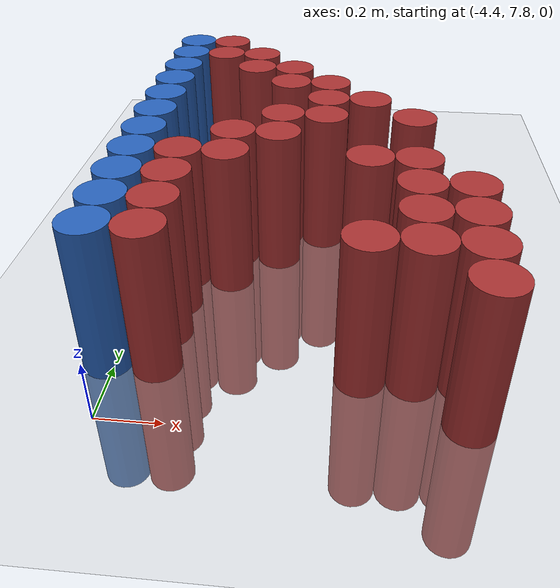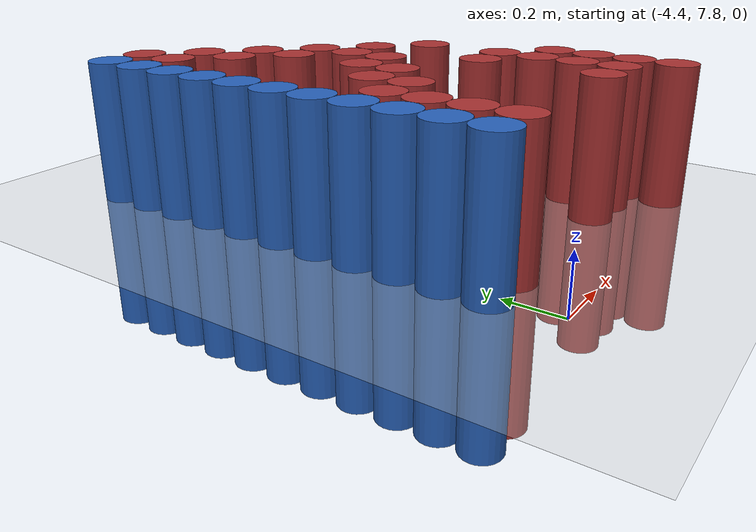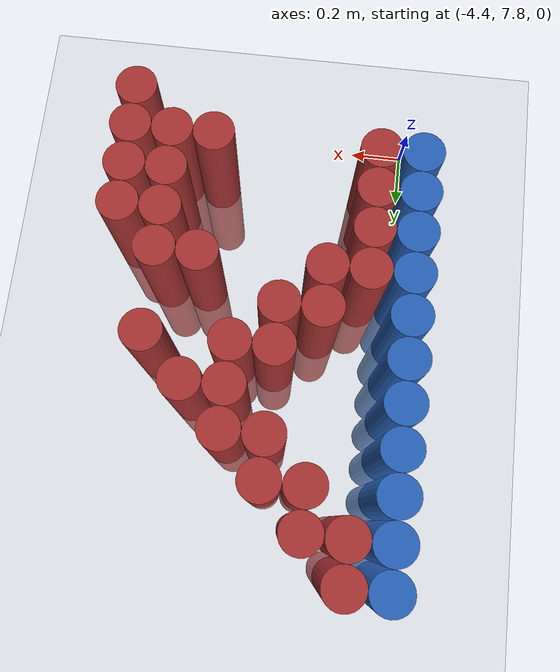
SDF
<sdf version="1.6">
 <world name="default">
  <model name="ground_plane">
   <static>1</static>
   <link name="link">
    <collision name="collision">
     <geometry><plane><normal>0 0 1</normal><size>100 100</size></plane></geometry>
     <surface><friction><ode><mu>100</mu><mu2>50</mu2></ode></friction></surface>
    </collision>
    <visual name="visual">
     <cast_shadows>0</cast_shadows>
     <geometry><plane><normal>0 0 1</normal><size>100 100</size></plane></geometry>
     <material>
      <script><uri>file://media/materials/scripts/gazebo.material</uri><name>Gazebo/Grey</name></script>
     </material>
    </visual>
   </link>
  </model>
  <model name="unit_cylinder_115">
   <static>1</static>
   <pose>-4.425000 8.025000 0.000000 0.000000 0.000000 0.000000</pose>
   <link name="link">
    <inertial>
     <mass>1</mass>
     <inertia><ixx>0.145833</ixx><ixy>0</ixy><ixz>0</ixz><iyy>0.145833</iyy><iyz>0</iyz><izz>0.125</izz></inertia>
    </inertial>
    <collision name="collision">
     <geometry><cylinder><radius>0.075000</radius><length>1</length></cylinder></geometry>
    </collision>
    <visual name="visual">
     <geometry><cylinder><radius>0.075000</radius><length>1</length></cylinder></geometry>
     <material>
      <ambient>0.152000 0.379000 0.720000 1</ambient>
      <diffuse>0.152000 0.379000 0.720000 1</diffuse>
     </material>
     <material>
      <script><name>Gazebo/Grey</name><uri>file://media/materials/scripts/gazebo.material</uri></script>
     </material>
    </visual>
    <sensor name="sensor_contact" type="contact"><contact><collision>collision</collision></contact></sensor>
   </link>
   <plugin filename="gz-sim-touchplugin-system" name="gz::sim::systems::TouchPlugin">
    <target>robot</target>
    <namespace>robot</namespace>
    <time>0.001</time>
    <enabled>true</enabled>
   </plugin>
  </model>
  <model name="unit_cylinder_116">
   <static>1</static>
   <pose>-4.425000 8.175000 0.000000 0.000000 0.000000 0.000000</pose>
   <link name="link">
    <inertial>
     <mass>1</mass>
     <inertia><ixx>0.145833</ixx><ixy>0</ixy><ixz>0</ixz><iyy>0.145833</iyy><iyz>0</iyz><izz>0.125</izz></inertia>
    </inertial>
    <collision name="collision">
     <geometry><cylinder><radius>0.075000</radius><length>1</length></cylinder></geometry>
    </collision>
    <visual name="visual">
     <geometry><cylinder><radius>0.075000</radius><length>1</length></cylinder></geometry>
     <material>
      <ambient>0.152000 0.379000 0.720000 1</ambient>
      <diffuse>0.152000 0.379000 0.720000 1</diffuse>
     </material>
     <material>
      <script><name>Gazebo/Grey</name><uri>file://media/materials/scripts/gazebo.material</uri></script>
     </material>
    </visual>
    <sensor name="sensor_contact" type="contact"><contact><collision>collision</collision></contact></sensor>
   </link>
   <plugin filename="gz-sim-touchplugin-system" name="gz::sim::systems::TouchPlugin">
    <target>robot</target>
    <namespace>robot</namespace>
    <time>0.001</time>
    <enabled>true</enabled>
   </plugin>
  </model>
  <model name="unit_cylinder_117">
   <static>1</static>
   <pose>-4.425000 8.325000 0.000000 0.000000 0.000000 0.000000</pose>
   <link name="link">
    <inertial>
     <mass>1</mass>
     <inertia><ixx>0.145833</ixx><ixy>0</ixy><ixz>0</ixz><iyy>0.145833</iyy><iyz>0</iyz><izz>0.125</izz></inertia>
    </inertial>
    <collision name="collision">
     <geometry><cylinder><radius>0.075000</radius><length>1</length></cylinder></geometry>
    </collision>
    <visual name="visual">
     <geometry><cylinder><radius>0.075000</radius><length>1</length></cylinder></geometry>
     <material>
      <ambient>0.152000 0.379000 0.720000 1</ambient>
      <diffuse>0.152000 0.379000 0.720000 1</diffuse>
     </material>
     <material>
      <script><name>Gazebo/Grey</name><uri>file://media/materials/scripts/gazebo.material</uri></script>
     </material>
    </visual>
    <sensor name="sensor_contact" type="contact"><contact><collision>collision</collision></contact></sensor>
   </link>
   <plugin filename="gz-sim-touchplugin-system" name="gz::sim::systems::TouchPlugin">
    <target>robot</target>
    <namespace>robot</namespace>
    <time>0.001</time>
    <enabled>true</enabled>
   </plugin>
  </model>
  <model name="unit_cylinder_118">
   <static>1</static>
   <pose>-4.425000 8.475000 0.000000 0.000000 0.000000 0.000000</pose>
   <link name="link">
    <inertial>
     <mass>1</mass>
     <inertia><ixx>0.145833</ixx><ixy>0</ixy><ixz>0</ixz><iyy>0.145833</iyy><iyz>0</iyz><izz>0.125</izz></inertia>
    </inertial>
    <collision name="collision">
     <geometry><cylinder><radius>0.075000</radius><length>1</length></cylinder></geometry>
    </collision>
    <visual name="visual">
     <geometry><cylinder><radius>0.075000</radius><length>1</length></cylinder></geometry>
     <material>
      <ambient>0.152000 0.379000 0.720000 1</ambient>
      <diffuse>0.152000 0.379000 0.720000 1</diffuse>
     </material>
     <material>
      <script><name>Gazebo/Grey</name><uri>file://media/materials/scripts/gazebo.material</uri></script>
     </material>
    </visual>
    <sensor name="sensor_contact" type="contact"><contact><collision>collision</collision></contact></sensor>
   </link>
   <plugin filename="gz-sim-touchplugin-system" name="gz::sim::systems::TouchPlugin">
    <target>robot</target>
    <namespace>robot</namespace>
    <time>0.001</time>
    <enabled>true</enabled>
   </plugin>
  </model>
  <model name="unit_cylinder_119">
   <static>1</static>
   <pose>-4.425000 8.625000 0.000000 0.000000 0.000000 0.000000</pose>
   <link name="link">
    <inertial>
     <mass>1</mass>
     <inertia><ixx>0.145833</ixx><ixy>0</ixy><ixz>0</ixz><iyy>0.145833</iyy><iyz>0</iyz><izz>0.125</izz></inertia>
    </inertial>
    <collision name="collision">
     <geometry><cylinder><radius>0.075000</radius><length>1</length></cylinder></geometry>
    </collision>
    <visual name="visual">
     <geometry><cylinder><radius>0.075000</radius><length>1</length></cylinder></geometry>
     <material>
      <ambient>0.152000 0.379000 0.720000 1</ambient>
      <diffuse>0.152000 0.379000 0.720000 1</diffuse>
     </material>
     <material>
      <script><name>Gazebo/Grey</name><uri>file://media/materials/scripts/gazebo.material</uri></script>
     </material>
    </visual>
    <sensor name="sensor_contact" type="contact"><contact><collision>collision</collision></contact></sensor>
   </link>
   <plugin filename="gz-sim-touchplugin-system" name="gz::sim::systems::TouchPlugin">
    <target>robot</target>
    <namespace>robot</namespace>
    <time>0.001</time>
    <enabled>true</enabled>
   </plugin>
  </model>
  <model name="unit_cylinder_120">
   <static>1</static>
   <pose>-4.425000 8.775000 0.000000 0.000000 0.000000 0.000000</pose>
   <link name="link">
    <inertial>
     <mass>1</mass>
     <inertia><ixx>0.145833</ixx><ixy>0</ixy><ixz>0</ixz><iyy>0.145833</iyy><iyz>0</iyz><izz>0.125</izz></inertia>
    </inertial>
    <collision name="collision">
     <geometry><cylinder><radius>0.075000</radius><length>1</length></cylinder></geometry>
    </collision>
    <visual name="visual">
     <geometry><cylinder><radius>0.075000</radius><length>1</length></cylinder></geometry>
     <material>
      <ambient>0.152000 0.379000 0.720000 1</ambient>
      <diffuse>0.152000 0.379000 0.720000 1</diffuse>
     </material>
     <material>
      <script><name>Gazebo/Grey</name><uri>file://media/materials/scripts/gazebo.material</uri></script>
     </material>
    </visual>
    <sensor name="sensor_contact" type="contact"><contact><collision>collision</collision></contact></sensor>
   </link>
   <plugin filename="gz-sim-touchplugin-system" name="gz::sim::systems::TouchPlugin">
    <target>robot</target>
    <namespace>robot</namespace>
    <time>0.001</time>
    <enabled>true</enabled>
   </plugin>
  </model>
  <model name="unit_cylinder_121">
   <static>1</static>
   <pose>-4.425000 8.925000 0.000000 0.000000 0.000000 0.000000</pose>
   <link name="link">
    <inertial>
     <mass>1</mass>
     <inertia><ixx>0.145833</ixx><ixy>0</ixy><ixz>0</ixz><iyy>0.145833</iyy><iyz>0</iyz><izz>0.125</izz></inertia>
    </inertial>
    <collision name="collision">
     <geometry><cylinder><radius>0.075000</radius><length>1</length></cylinder></geometry>
    </collision>
    <visual name="visual">
     <geometry><cylinder><radius>0.075000</radius><length>1</length></cylinder></geometry>
     <material>
      <ambient>0.152000 0.379000 0.720000 1</ambient>
      <diffuse>0.152000 0.379000 0.720000 1</diffuse>
     </material>
     <material>
      <script><name>Gazebo/Grey</name><uri>file://media/materials/scripts/gazebo.material</uri></script>
     </material>
    </visual>
    <sensor name="sensor_contact" type="contact"><contact><collision>collision</collision></contact></sensor>
   </link>
   <plugin filename="gz-sim-touchplugin-system" name="gz::sim::systems::TouchPlugin">
    <target>robot</target>
    <namespace>robot</namespace>
    <time>0.001</time>
    <enabled>true</enabled>
   </plugin>
  </model>
  <model name="unit_cylinder_122">
   <static>1</static>
   <pose>-4.425000 9.075000 0.000000 0.000000 0.000000 0.000000</pose>
   <link name="link">
    <inertial>
     <mass>1</mass>
     <inertia><ixx>0.145833</ixx><ixy>0</ixy><ixz>0</ixz><iyy>0.145833</iyy><iyz>0</iyz><izz>0.125</izz></inertia>
    </inertial>
    <collision name="collision">
     <geometry><cylinder><radius>0.075000</radius><length>1</length></cylinder></geometry>
    </collision>
    <visual name="visual">
     <geometry><cylinder><radius>0.075000</radius><length>1</length></cylinder></geometry>
     <material>
      <ambient>0.152000 0.379000 0.720000 1</ambient>
      <diffuse>0.152000 0.379000 0.720000 1</diffuse>
     </material>
     <material>
      <script><name>Gazebo/Grey</name><uri>file://media/materials/scripts/gazebo.material</uri></script>
     </material>
    </visual>
    <sensor name="sensor_contact" type="contact"><contact><collision>collision</collision></contact></sensor>
   </link>
   <plugin filename="gz-sim-touchplugin-system" name="gz::sim::systems::TouchPlugin">
    <target>robot</target>
    <namespace>robot</namespace>
    <time>0.001</time>
    <enabled>true</enabled>
   </plugin>
  </model>
  <model name="unit_cylinder_123">
   <static>1</static>
   <pose>-4.425000 9.225000 0.000000 0.000000 0.000000 0.000000</pose>
   <link name="link">
    <inertial>
     <mass>1</mass>
     <inertia><ixx>0.145833</ixx><ixy>0</ixy><ixz>0</ixz><iyy>0.145833</iyy><iyz>0</iyz><izz>0.125</izz></inertia>
    </inertial>
    <collision name="collision">
     <geometry><cylinder><radius>0.075000</radius><length>1</length></cylinder></geometry>
    </collision>
    <visual name="visual">
     <geometry><cylinder><radius>0.075000</radius><length>1</length></cylinder></geometry>
     <material>
      <ambient>0.152000 0.379000 0.720000 1</ambient>
      <diffuse>0.152000 0.379000 0.720000 1</diffuse>
     </material>
     <material>
      <script><name>Gazebo/Grey</name><uri>file://media/materials/scripts/gazebo.material</uri></script>
     </material>
    </visual>
    <sensor name="sensor_contact" type="contact"><contact><collision>collision</collision></contact></sensor>
   </link>
   <plugin filename="gz-sim-touchplugin-system" name="gz::sim::systems::TouchPlugin">
    <target>robot</target>
    <namespace>robot</namespace>
    <time>0.001</time>
    <enabled>true</enabled>
   </plugin>
  </model>
  <model name="unit_cylinder_124">
   <static>1</static>
   <pose>-4.425000 9.375000 0.000000 0.000000 0.000000 0.000000</pose>
   <link name="link">
    <inertial>
     <mass>1</mass>
     <inertia><ixx>0.145833</ixx><ixy>0</ixy><ixz>0</ixz><iyy>0.145833</iyy><iyz>0</iyz><izz>0.125</izz></inertia>
    </inertial>
    <collision name="collision">
     <geometry><cylinder><radius>0.075000</radius><length>1</length></cylinder></geometry>
    </collision>
    <visual name="visual">
     <geometry><cylinder><radius>0.075000</radius><length>1</length></cylinder></geometry>
     <material>
      <ambient>0.152000 0.379000 0.720000 1</ambient>
      <diffuse>0.152000 0.379000 0.720000 1</diffuse>
     </material>
     <material>
      <script><name>Gazebo/Grey</name><uri>file://media/materials/scripts/gazebo.material</uri></script>
     </material>
    </visual>
    <sensor name="sensor_contact" type="contact"><contact><collision>collision</collision></contact></sensor>
   </link>
   <plugin filename="gz-sim-touchplugin-system" name="gz::sim::systems::TouchPlugin">
    <target>robot</target>
    <namespace>robot</namespace>
    <time>0.001</time>
    <enabled>true</enabled>
   </plugin>
  </model>
  <model name="unit_cylinder_125">
   <static>1</static>
   <pose>-4.425000 9.525000 0.000000 0.000000 0.000000 0.000000</pose>
   <link name="link">
    <inertial>
     <mass>1</mass>
     <inertia><ixx>0.145833</ixx><ixy>0</ixy><ixz>0</ixz><iyy>0.145833</iyy><iyz>0</iyz><izz>0.125</izz></inertia>
    </inertial>
    <collision name="collision">
     <geometry><cylinder><radius>0.075000</radius><length>1</length></cylinder></geometry>
    </collision>
    <visual name="visual">
     <geometry><cylinder><radius>0.075000</radius><length>1</length></cylinder></geometry>
     <material>
      <ambient>0.152000 0.379000 0.720000 1</ambient>
      <diffuse>0.152000 0.379000 0.720000 1</diffuse>
     </material>
     <material>
      <script><name>Gazebo/Grey</name><uri>file://media/materials/scripts/gazebo.material</uri></script>
     </material>
    </visual>
    <sensor name="sensor_contact" type="contact"><contact><collision>collision</collision></contact></sensor>
   </link>
   <plugin filename="gz-sim-touchplugin-system" name="gz::sim::systems::TouchPlugin">
    <target>robot</target>
    <namespace>robot</namespace>
    <time>0.001</time>
    <enabled>true</enabled>
   </plugin>
  </model>
  <model name="unit_cylinder_139">
   <static>1</static>
   <pose>-4.275000 8.025000 0.000000 0.000000 0.000000 0.000000</pose>
   <link name="link">
    <inertial>
     <mass>1</mass>
     <inertia><ixx>0.145833</ixx><ixy>0</ixy><ixz>0</ixz><iyy>0.145833</iyy><iyz>0</iyz><izz>0.125</izz></inertia>
    </inertial>
    <collision name="collision">
     <geometry><cylinder><radius>0.075000</radius><length>1</length></cylinder></geometry>
    </collision>
    <visual name="visual">
     <geometry><cylinder><radius>0.075000</radius><length>1</length></cylinder></geometry>
     <material>
      <ambient>0.648000 0.192000 0.192000 1</ambient>
      <diffuse>0.648000 0.192000 0.192000 1</diffuse>
     </material>
     <material>
      <script><name>Gazebo/Grey</name><uri>file://media/materials/scripts/gazebo.material</uri></script>
     </material>
    </visual>
    <sensor name="sensor_contact" type="contact"><contact><collision>collision</collision></contact></sensor>
   </link>
   <plugin filename="gz-sim-touchplugin-system" name="gz::sim::systems::TouchPlugin">
    <target>robot</target>
    <namespace>robot</namespace>
    <time>0.001</time>
    <enabled>true</enabled>
   </plugin>
  </model>
  <model name="unit_cylinder_140">
   <static>1</static>
   <pose>-4.275000 8.175000 0.000000 0.000000 0.000000 0.000000</pose>
   <link name="link">
    <inertial>
     <mass>1</mass>
     <inertia><ixx>0.145833</ixx><ixy>0</ixy><ixz>0</ixz><iyy>0.145833</iyy><iyz>0</iyz><izz>0.125</izz></inertia>
    </inertial>
    <collision name="collision">
     <geometry><cylinder><radius>0.075000</radius><length>1</length></cylinder></geometry>
    </collision>
    <visual name="visual">
     <geometry><cylinder><radius>0.075000</radius><length>1</length></cylinder></geometry>
     <material>
      <ambient>0.648000 0.192000 0.192000 1</ambient>
      <diffuse>0.648000 0.192000 0.192000 1</diffuse>
     </material>
     <material>
      <script><name>Gazebo/Grey</name><uri>file://media/materials/scripts/gazebo.material</uri></script>
     </material>
    </visual>
    <sensor name="sensor_contact" type="contact"><contact><collision>collision</collision></contact></sensor>
   </link>
   <plugin filename="gz-sim-touchplugin-system" name="gz::sim::systems::TouchPlugin">
    <target>robot</target>
    <namespace>robot</namespace>
    <time>0.001</time>
    <enabled>true</enabled>
   </plugin>
  </model>
  <model name="unit_cylinder_141">
   <static>1</static>
   <pose>-4.275000 8.325000 0.000000 0.000000 0.000000 0.000000</pose>
   <link name="link">
    <inertial>
     <mass>1</mass>
     <inertia><ixx>0.145833</ixx><ixy>0</ixy><ixz>0</ixz><iyy>0.145833</iyy><iyz>0</iyz><izz>0.125</izz></inertia>
    </inertial>
    <collision name="collision">
     <geometry><cylinder><radius>0.075000</radius><length>1</length></cylinder></geometry>
    </collision>
    <visual name="visual">
     <geometry><cylinder><radius>0.075000</radius><length>1</length></cylinder></geometry>
     <material>
      <ambient>0.648000 0.192000 0.192000 1</ambient>
      <diffuse>0.648000 0.192000 0.192000 1</diffuse>
     </material>
     <material>
      <script><name>Gazebo/Grey</name><uri>file://media/materials/scripts/gazebo.material</uri></script>
     </material>
    </visual>
    <sensor name="sensor_contact" type="contact"><contact><collision>collision</collision></contact></sensor>
   </link>
   <plugin filename="gz-sim-touchplugin-system" name="gz::sim::systems::TouchPlugin">
    <target>robot</target>
    <namespace>robot</namespace>
    <time>0.001</time>
    <enabled>true</enabled>
   </plugin>
  </model>
  <model name="unit_cylinder_142">
   <static>1</static>
   <pose>-4.275000 8.475000 0.000000 0.000000 0.000000 0.000000</pose>
   <link name="link">
    <inertial>
     <mass>1</mass>
     <inertia><ixx>0.145833</ixx><ixy>0</ixy><ixz>0</ixz><iyy>0.145833</iyy><iyz>0</iyz><izz>0.125</izz></inertia>
    </inertial>
    <collision name="collision">
     <geometry><cylinder><radius>0.075000</radius><length>1</length></cylinder></geometry>
    </collision>
    <visual name="visual">
     <geometry><cylinder><radius>0.075000</radius><length>1</length></cylinder></geometry>
     <material>
      <ambient>0.648000 0.192000 0.192000 1</ambient>
      <diffuse>0.648000 0.192000 0.192000 1</diffuse>
     </material>
     <material>
      <script><name>Gazebo/Grey</name><uri>file://media/materials/scripts/gazebo.material</uri></script>
     </material>
    </visual>
    <sensor name="sensor_contact" type="contact"><contact><collision>collision</collision></contact></sensor>
   </link>
   <plugin filename="gz-sim-touchplugin-system" name="gz::sim::systems::TouchPlugin">
    <target>robot</target>
    <namespace>robot</namespace>
    <time>0.001</time>
    <enabled>true</enabled>
   </plugin>
  </model>
  <model name="unit_cylinder_143">
   <static>1</static>
   <pose>-4.275000 9.375000 0.000000 0.000000 0.000000 0.000000</pose>
   <link name="link">
    <inertial>
     <mass>1</mass>
     <inertia><ixx>0.145833</ixx><ixy>0</ixy><ixz>0</ixz><iyy>0.145833</iyy><iyz>0</iyz><izz>0.125</izz></inertia>
    </inertial>
    <collision name="collision">
     <geometry><cylinder><radius>0.075000</radius><length>1</length></cylinder></geometry>
    </collision>
    <visual name="visual">
     <geometry><cylinder><radius>0.075000</radius><length>1</length></cylinder></geometry>
     <material>
      <ambient>0.648000 0.192000 0.192000 1</ambient>
      <diffuse>0.648000 0.192000 0.192000 1</diffuse>
     </material>
     <material>
      <script><name>Gazebo/Grey</name><uri>file://media/materials/scripts/gazebo.material</uri></script>
     </material>
    </visual>
    <sensor name="sensor_contact" type="contact"><contact><collision>collision</collision></contact></sensor>
   </link>
   <plugin filename="gz-sim-touchplugin-system" name="gz::sim::systems::TouchPlugin">
    <target>robot</target>
    <namespace>robot</namespace>
    <time>0.001</time>
    <enabled>true</enabled>
   </plugin>
  </model>
  <model name="unit_cylinder_144">
   <static>1</static>
   <pose>-4.275000 9.525000 0.000000 0.000000 0.000000 0.000000</pose>
   <link name="link">
    <inertial>
     <mass>1</mass>
     <inertia><ixx>0.145833</ixx><ixy>0</ixy><ixz>0</ixz><iyy>0.145833</iyy><iyz>0</iyz><izz>0.125</izz></inertia>
    </inertial>
    <collision name="collision">
     <geometry><cylinder><radius>0.075000</radius><length>1</length></cylinder></geometry>
    </collision>
    <visual name="visual">
     <geometry><cylinder><radius>0.075000</radius><length>1</length></cylinder></geometry>
     <material>
      <ambient>0.648000 0.192000 0.192000 1</ambient>
      <diffuse>0.648000 0.192000 0.192000 1</diffuse>
     </material>
     <material>
      <script><name>Gazebo/Grey</name><uri>file://media/materials/scripts/gazebo.material</uri></script>
     </material>
    </visual>
    <sensor name="sensor_contact" type="contact"><contact><collision>collision</collision></contact></sensor>
   </link>
   <plugin filename="gz-sim-touchplugin-system" name="gz::sim::systems::TouchPlugin">
    <target>robot</target>
    <namespace>robot</namespace>
    <time>0.001</time>
    <enabled>true</enabled>
   </plugin>
  </model>
  <model name="unit_cylinder_149">
   <static>1</static>
   <pose>-4.125000 8.475000 0.000000 0.000000 0.000000 0.000000</pose>
   <link name="link">
    <inertial>
     <mass>1</mass>
     <inertia><ixx>0.145833</ixx><ixy>0</ixy><ixz>0</ixz><iyy>0.145833</iyy><iyz>0</iyz><izz>0.125</izz></inertia>
    </inertial>
    <collision name="collision">
     <geometry><cylinder><radius>0.075000</radius><length>1</length></cylinder></geometry>
    </collision>
    <visual name="visual">
     <geometry><cylinder><radius>0.075000</radius><length>1</length></cylinder></geometry>
     <material>
      <ambient>0.648000 0.192000 0.192000 1</ambient>
      <diffuse>0.648000 0.192000 0.192000 1</diffuse>
     </material>
     <material>
      <script><name>Gazebo/Grey</name><uri>file://media/materials/scripts/gazebo.material</uri></script>
     </material>
    </visual>
    <sensor name="sensor_contact" type="contact"><contact><collision>collision</collision></contact></sensor>
   </link>
   <plugin filename="gz-sim-touchplugin-system" name="gz::sim::systems::TouchPlugin">
    <target>robot</target>
    <namespace>robot</namespace>
    <time>0.001</time>
    <enabled>true</enabled>
   </plugin>
  </model>
  <model name="unit_cylinder_150">
   <static>1</static>
   <pose>-4.125000 8.625000 0.000000 0.000000 0.000000 0.000000</pose>
   <link name="link">
    <inertial>
     <mass>1</mass>
     <inertia><ixx>0.145833</ixx><ixy>0</ixy><ixz>0</ixz><iyy>0.145833</iyy><iyz>0</iyz><izz>0.125</izz></inertia>
    </inertial>
    <collision name="collision">
     <geometry><cylinder><radius>0.075000</radius><length>1</length></cylinder></geometry>
    </collision>
    <visual name="visual">
     <geometry><cylinder><radius>0.075000</radius><length>1</length></cylinder></geometry>
     <material>
      <ambient>0.648000 0.192000 0.192000 1</ambient>
      <diffuse>0.648000 0.192000 0.192000 1</diffuse>
     </material>
     <material>
      <script><name>Gazebo/Grey</name><uri>file://media/materials/scripts/gazebo.material</uri></script>
     </material>
    </visual>
    <sensor name="sensor_contact" type="contact"><contact><collision>collision</collision></contact></sensor>
   </link>
   <plugin filename="gz-sim-touchplugin-system" name="gz::sim::systems::TouchPlugin">
    <target>robot</target>
    <namespace>robot</namespace>
    <time>0.001</time>
    <enabled>true</enabled>
   </plugin>
  </model>
  <model name="unit_cylinder_151">
   <static>1</static>
   <pose>-4.125000 9.225000 0.000000 0.000000 0.000000 0.000000</pose>
   <link name="link">
    <inertial>
     <mass>1</mass>
     <inertia><ixx>0.145833</ixx><ixy>0</ixy><ixz>0</ixz><iyy>0.145833</iyy><iyz>0</iyz><izz>0.125</izz></inertia>
    </inertial>
    <collision name="collision">
     <geometry><cylinder><radius>0.075000</radius><length>1</length></cylinder></geometry>
    </collision>
    <visual name="visual">
     <geometry><cylinder><radius>0.075000</radius><length>1</length></cylinder></geometry>
     <material>
      <ambient>0.648000 0.192000 0.192000 1</ambient>
      <diffuse>0.648000 0.192000 0.192000 1</diffuse>
     </material>
     <material>
      <script><name>Gazebo/Grey</name><uri>file://media/materials/scripts/gazebo.material</uri></script>
     </material>
    </visual>
    <sensor name="sensor_contact" type="contact"><contact><collision>collision</collision></contact></sensor>
   </link>
   <plugin filename="gz-sim-touchplugin-system" name="gz::sim::systems::TouchPlugin">
    <target>robot</target>
    <namespace>robot</namespace>
    <time>0.001</time>
    <enabled>true</enabled>
   </plugin>
  </model>
  <model name="unit_cylinder_152">
   <static>1</static>
   <pose>-4.125000 9.375000 0.000000 0.000000 0.000000 0.000000</pose>
   <link name="link">
    <inertial>
     <mass>1</mass>
     <inertia><ixx>0.145833</ixx><ixy>0</ixy><ixz>0</ixz><iyy>0.145833</iyy><iyz>0</iyz><izz>0.125</izz></inertia>
    </inertial>
    <collision name="collision">
     <geometry><cylinder><radius>0.075000</radius><length>1</length></cylinder></geometry>
    </collision>
    <visual name="visual">
     <geometry><cylinder><radius>0.075000</radius><length>1</length></cylinder></geometry>
     <material>
      <ambient>0.648000 0.192000 0.192000 1</ambient>
      <diffuse>0.648000 0.192000 0.192000 1</diffuse>
     </material>
     <material>
      <script><name>Gazebo/Grey</name><uri>file://media/materials/scripts/gazebo.material</uri></script>
     </material>
    </visual>
    <sensor name="sensor_contact" type="contact"><contact><collision>collision</collision></contact></sensor>
   </link>
   <plugin filename="gz-sim-touchplugin-system" name="gz::sim::systems::TouchPlugin">
    <target>robot</target>
    <namespace>robot</namespace>
    <time>0.001</time>
    <enabled>true</enabled>
   </plugin>
  </model>
  <model name="unit_cylinder_154">
   <static>1</static>
   <pose>-3.975000 8.625000 0.000000 0.000000 0.000000 0.000000</pose>
   <link name="link">
    <inertial>
     <mass>1</mass>
     <inertia><ixx>0.145833</ixx><ixy>0</ixy><ixz>0</ixz><iyy>0.145833</iyy><iyz>0</iyz><izz>0.125</izz></inertia>
    </inertial>
    <collision name="collision">
     <geometry><cylinder><radius>0.075000</radius><length>1</length></cylinder></geometry>
    </collision>
    <visual name="visual">
     <geometry><cylinder><radius>0.075000</radius><length>1</length></cylinder></geometry>
     <material>
      <ambient>0.648000 0.192000 0.192000 1</ambient>
      <diffuse>0.648000 0.192000 0.192000 1</diffuse>
     </material>
     <material>
      <script><name>Gazebo/Grey</name><uri>file://media/materials/scripts/gazebo.material</uri></script>
     </material>
    </visual>
    <sensor name="sensor_contact" type="contact"><contact><collision>collision</collision></contact></sensor>
   </link>
   <plugin filename="gz-sim-touchplugin-system" name="gz::sim::systems::TouchPlugin">
    <target>robot</target>
    <namespace>robot</namespace>
    <time>0.001</time>
    <enabled>true</enabled>
   </plugin>
  </model>
  <model name="unit_cylinder_155">
   <static>1</static>
   <pose>-3.975000 8.775000 0.000000 0.000000 0.000000 0.000000</pose>
   <link name="link">
    <inertial>
     <mass>1</mass>
     <inertia><ixx>0.145833</ixx><ixy>0</ixy><ixz>0</ixz><iyy>0.145833</iyy><iyz>0</iyz><izz>0.125</izz></inertia>
    </inertial>
    <collision name="collision">
     <geometry><cylinder><radius>0.075000</radius><length>1</length></cylinder></geometry>
    </collision>
    <visual name="visual">
     <geometry><cylinder><radius>0.075000</radius><length>1</length></cylinder></geometry>
     <material>
      <ambient>0.648000 0.192000 0.192000 1</ambient>
      <diffuse>0.648000 0.192000 0.192000 1</diffuse>
     </material>
     <material>
      <script><name>Gazebo/Grey</name><uri>file://media/materials/scripts/gazebo.material</uri></script>
     </material>
    </visual>
    <sensor name="sensor_contact" type="contact"><contact><collision>collision</collision></contact></sensor>
   </link>
   <plugin filename="gz-sim-touchplugin-system" name="gz::sim::systems::TouchPlugin">
    <target>robot</target>
    <namespace>robot</namespace>
    <time>0.001</time>
    <enabled>true</enabled>
   </plugin>
  </model>
  <model name="unit_cylinder_156">
   <static>1</static>
   <pose>-3.975000 9.075000 0.000000 0.000000 0.000000 0.000000</pose>
   <link name="link">
    <inertial>
     <mass>1</mass>
     <inertia><ixx>0.145833</ixx><ixy>0</ixy><ixz>0</ixz><iyy>0.145833</iyy><iyz>0</iyz><izz>0.125</izz></inertia>
    </inertial>
    <collision name="collision">
     <geometry><cylinder><radius>0.075000</radius><length>1</length></cylinder></geometry>
    </collision>
    <visual name="visual">
     <geometry><cylinder><radius>0.075000</radius><length>1</length></cylinder></geometry>
     <material>
      <ambient>0.648000 0.192000 0.192000 1</ambient>
      <diffuse>0.648000 0.192000 0.192000 1</diffuse>
     </material>
     <material>
      <script><name>Gazebo/Grey</name><uri>file://media/materials/scripts/gazebo.material</uri></script>
     </material>
    </visual>
    <sensor name="sensor_contact" type="contact"><contact><collision>collision</collision></contact></sensor>
   </link>
   <plugin filename="gz-sim-touchplugin-system" name="gz::sim::systems::TouchPlugin">
    <target>robot</target>
    <namespace>robot</namespace>
    <time>0.001</time>
    <enabled>true</enabled>
   </plugin>
  </model>
  <model name="unit_cylinder_157">
   <static>1</static>
   <pose>-3.975000 9.225000 0.000000 0.000000 0.000000 0.000000</pose>
   <link name="link">
    <inertial>
     <mass>1</mass>
     <inertia><ixx>0.145833</ixx><ixy>0</ixy><ixz>0</ixz><iyy>0.145833</iyy><iyz>0</iyz><izz>0.125</izz></inertia>
    </inertial>
    <collision name="collision">
     <geometry><cylinder><radius>0.075000</radius><length>1</length></cylinder></geometry>
    </collision>
    <visual name="visual">
     <geometry><cylinder><radius>0.075000</radius><length>1</length></cylinder></geometry>
     <material>
      <ambient>0.648000 0.192000 0.192000 1</ambient>
      <diffuse>0.648000 0.192000 0.192000 1</diffuse>
     </material>
     <material>
      <script><name>Gazebo/Grey</name><uri>file://media/materials/scripts/gazebo.material</uri></script>
     </material>
    </visual>
    <sensor name="sensor_contact" type="contact"><contact><collision>collision</collision></contact></sensor>
   </link>
   <plugin filename="gz-sim-touchplugin-system" name="gz::sim::systems::TouchPlugin">
    <target>robot</target>
    <namespace>robot</namespace>
    <time>0.001</time>
    <enabled>true</enabled>
   </plugin>
  </model>
  <model name="unit_cylinder_162">
   <static>1</static>
   <pose>-3.825000 8.775000 0.000000 0.000000 0.000000 0.000000</pose>
   <link name="link">
    <inertial>
     <mass>1</mass>
     <inertia><ixx>0.145833</ixx><ixy>0</ixy><ixz>0</ixz><iyy>0.145833</iyy><iyz>0</iyz><izz>0.125</izz></inertia>
    </inertial>
    <collision name="collision">
     <geometry><cylinder><radius>0.075000</radius><length>1</length></cylinder></geometry>
    </collision>
    <visual name="visual">
     <geometry><cylinder><radius>0.075000</radius><length>1</length></cylinder></geometry>
     <material>
      <ambient>0.648000 0.192000 0.192000 1</ambient>
      <diffuse>0.648000 0.192000 0.192000 1</diffuse>
     </material>
     <material>
      <script><name>Gazebo/Grey</name><uri>file://media/materials/scripts/gazebo.material</uri></script>
     </material>
    </visual>
    <sensor name="sensor_contact" type="contact"><contact><collision>collision</collision></contact></sensor>
   </link>
   <plugin filename="gz-sim-touchplugin-system" name="gz::sim::systems::TouchPlugin">
    <target>robot</target>
    <namespace>robot</namespace>
    <time>0.001</time>
    <enabled>true</enabled>
   </plugin>
  </model>
  <model name="unit_cylinder_163">
   <static>1</static>
   <pose>-3.825000 8.925000 0.000000 0.000000 0.000000 0.000000</pose>
   <link name="link">
    <inertial>
     <mass>1</mass>
     <inertia><ixx>0.145833</ixx><ixy>0</ixy><ixz>0</ixz><iyy>0.145833</iyy><iyz>0</iyz><izz>0.125</izz></inertia>
    </inertial>
    <collision name="collision">
     <geometry><cylinder><radius>0.075000</radius><length>1</length></cylinder></geometry>
    </collision>
    <visual name="visual">
     <geometry><cylinder><radius>0.075000</radius><length>1</length></cylinder></geometry>
     <material>
      <ambient>0.648000 0.192000 0.192000 1</ambient>
      <diffuse>0.648000 0.192000 0.192000 1</diffuse>
     </material>
     <material>
      <script><name>Gazebo/Grey</name><uri>file://media/materials/scripts/gazebo.material</uri></script>
     </material>
    </visual>
    <sensor name="sensor_contact" type="contact"><contact><collision>collision</collision></contact></sensor>
   </link>
   <plugin filename="gz-sim-touchplugin-system" name="gz::sim::systems::TouchPlugin">
    <target>robot</target>
    <namespace>robot</namespace>
    <time>0.001</time>
    <enabled>true</enabled>
   </plugin>
  </model>
  <model name="unit_cylinder_164">
   <static>1</static>
   <pose>-3.825000 9.075000 0.000000 0.000000 0.000000 0.000000</pose>
   <link name="link">
    <inertial>
     <mass>1</mass>
     <inertia><ixx>0.145833</ixx><ixy>0</ixy><ixz>0</ixz><iyy>0.145833</iyy><iyz>0</iyz><izz>0.125</izz></inertia>
    </inertial>
    <collision name="collision">
     <geometry><cylinder><radius>0.075000</radius><length>1</length></cylinder></geometry>
    </collision>
    <visual name="visual">
     <geometry><cylinder><radius>0.075000</radius><length>1</length></cylinder></geometry>
     <material>
      <ambient>0.648000 0.192000 0.192000 1</ambient>
      <diffuse>0.648000 0.192000 0.192000 1</diffuse>
     </material>
     <material>
      <script><name>Gazebo/Grey</name><uri>file://media/materials/scripts/gazebo.material</uri></script>
     </material>
    </visual>
    <sensor name="sensor_contact" type="contact"><contact><collision>collision</collision></contact></sensor>
   </link>
   <plugin filename="gz-sim-touchplugin-system" name="gz::sim::systems::TouchPlugin">
    <target>robot</target>
    <namespace>robot</namespace>
    <time>0.001</time>
    <enabled>true</enabled>
   </plugin>
  </model>
  <model name="unit_cylinder_170">
   <static>1</static>
   <pose>-3.675000 8.025000 0.000000 0.000000 0.000000 0.000000</pose>
   <link name="link">
    <inertial>
     <mass>1</mass>
     <inertia><ixx>0.145833</ixx><ixy>0</ixy><ixz>0</ixz><iyy>0.145833</iyy><iyz>0</iyz><izz>0.125</izz></inertia>
    </inertial>
    <collision name="collision">
     <geometry><cylinder><radius>0.075000</radius><length>1</length></cylinder></geometry>
    </collision>
    <visual name="visual">
     <geometry><cylinder><radius>0.075000</radius><length>1</length></cylinder></geometry>
     <material>
      <ambient>0.648000 0.192000 0.192000 1</ambient>
      <diffuse>0.648000 0.192000 0.192000 1</diffuse>
     </material>
     <material>
      <script><name>Gazebo/Grey</name><uri>file://media/materials/scripts/gazebo.material</uri></script>
     </material>
    </visual>
    <sensor name="sensor_contact" type="contact"><contact><collision>collision</collision></contact></sensor>
   </link>
   <plugin filename="gz-sim-touchplugin-system" name="gz::sim::systems::TouchPlugin">
    <target>robot</target>
    <namespace>robot</namespace>
    <time>0.001</time>
    <enabled>true</enabled>
   </plugin>
  </model>
  <model name="unit_cylinder_171">
   <static>1</static>
   <pose>-3.675000 8.475000 0.000000 0.000000 0.000000 0.000000</pose>
   <link name="link">
    <inertial>
     <mass>1</mass>
     <inertia><ixx>0.145833</ixx><ixy>0</ixy><ixz>0</ixz><iyy>0.145833</iyy><iyz>0</iyz><izz>0.125</izz></inertia>
    </inertial>
    <collision name="collision">
     <geometry><cylinder><radius>0.075000</radius><length>1</length></cylinder></geometry>
    </collision>
    <visual name="visual">
     <geometry><cylinder><radius>0.075000</radius><length>1</length></cylinder></geometry>
     <material>
      <ambient>0.648000 0.192000 0.192000 1</ambient>
      <diffuse>0.648000 0.192000 0.192000 1</diffuse>
     </material>
     <material>
      <script><name>Gazebo/Grey</name><uri>file://media/materials/scripts/gazebo.material</uri></script>
     </material>
    </visual>
    <sensor name="sensor_contact" type="contact"><contact><collision>collision</collision></contact></sensor>
   </link>
   <plugin filename="gz-sim-touchplugin-system" name="gz::sim::systems::TouchPlugin">
    <target>robot</target>
    <namespace>robot</namespace>
    <time>0.001</time>
    <enabled>true</enabled>
   </plugin>
  </model>
  <model name="unit_cylinder_172">
   <static>1</static>
   <pose>-3.675000 8.925000 0.000000 0.000000 0.000000 0.000000</pose>
   <link name="link">
    <inertial>
     <mass>1</mass>
     <inertia><ixx>0.145833</ixx><ixy>0</ixy><ixz>0</ixz><iyy>0.145833</iyy><iyz>0</iyz><izz>0.125</izz></inertia>
    </inertial>
    <collision name="collision">
     <geometry><cylinder><radius>0.075000</radius><length>1</length></cylinder></geometry>
    </collision>
    <visual name="visual">
     <geometry><cylinder><radius>0.075000</radius><length>1</length></cylinder></geometry>
     <material>
      <ambient>0.648000 0.192000 0.192000 1</ambient>
      <diffuse>0.648000 0.192000 0.192000 1</diffuse>
     </material>
     <material>
      <script><name>Gazebo/Grey</name><uri>file://media/materials/scripts/gazebo.material</uri></script>
     </material>
    </visual>
    <sensor name="sensor_contact" type="contact"><contact><collision>collision</collision></contact></sensor>
   </link>
   <plugin filename="gz-sim-touchplugin-system" name="gz::sim::systems::TouchPlugin">
    <target>robot</target>
    <namespace>robot</namespace>
    <time>0.001</time>
    <enabled>true</enabled>
   </plugin>
  </model>
  <model name="unit_cylinder_178">
   <static>1</static>
   <pose>-3.525000 8.025000 0.000000 0.000000 0.000000 0.000000</pose>
   <link name="link">
    <inertial>
     <mass>1</mass>
     <inertia><ixx>0.145833</ixx><ixy>0</ixy><ixz>0</ixz><iyy>0.145833</iyy><iyz>0</iyz><izz>0.125</izz></inertia>
    </inertial>
    <collision name="collision">
     <geometry><cylinder><radius>0.075000</radius><length>1</length></cylinder></geometry>
    </collision>
    <visual name="visual">
     <geometry><cylinder><radius>0.075000</radius><length>1</length></cylinder></geometry>
     <material>
      <ambient>0.648000 0.192000 0.192000 1</ambient>
      <diffuse>0.648000 0.192000 0.192000 1</diffuse>
     </material>
     <material>
      <script><name>Gazebo/Grey</name><uri>file://media/materials/scripts/gazebo.material</uri></script>
     </material>
    </visual>
    <sensor name="sensor_contact" type="contact"><contact><collision>collision</collision></contact></sensor>
   </link>
   <plugin filename="gz-sim-touchplugin-system" name="gz::sim::systems::TouchPlugin">
    <target>robot</target>
    <namespace>robot</namespace>
    <time>0.001</time>
    <enabled>true</enabled>
   </plugin>
  </model>
  <model name="unit_cylinder_179">
   <static>1</static>
   <pose>-3.525000 8.175000 0.000000 0.000000 0.000000 0.000000</pose>
   <link name="link">
    <inertial>
     <mass>1</mass>
     <inertia><ixx>0.145833</ixx><ixy>0</ixy><ixz>0</ixz><iyy>0.145833</iyy><iyz>0</iyz><izz>0.125</izz></inertia>
    </inertial>
    <collision name="collision">
     <geometry><cylinder><radius>0.075000</radius><length>1</length></cylinder></geometry>
    </collision>
    <visual name="visual">
     <geometry><cylinder><radius>0.075000</radius><length>1</length></cylinder></geometry>
     <material>
      <ambient>0.648000 0.192000 0.192000 1</ambient>
      <diffuse>0.648000 0.192000 0.192000 1</diffuse>
     </material>
     <material>
      <script><name>Gazebo/Grey</name><uri>file://media/materials/scripts/gazebo.material</uri></script>
     </material>
    </visual>
    <sensor name="sensor_contact" type="contact"><contact><collision>collision</collision></contact></sensor>
   </link>
   <plugin filename="gz-sim-touchplugin-system" name="gz::sim::systems::TouchPlugin">
    <target>robot</target>
    <namespace>robot</namespace>
    <time>0.001</time>
    <enabled>true</enabled>
   </plugin>
  </model>
  <model name="unit_cylinder_180">
   <static>1</static>
   <pose>-3.525000 8.325000 0.000000 0.000000 0.000000 0.000000</pose>
   <link name="link">
    <inertial>
     <mass>1</mass>
     <inertia><ixx>0.145833</ixx><ixy>0</ixy><ixz>0</ixz><iyy>0.145833</iyy><iyz>0</iyz><izz>0.125</izz></inertia>
    </inertial>
    <collision name="collision">
     <geometry><cylinder><radius>0.075000</radius><length>1</length></cylinder></geometry>
    </collision>
    <visual name="visual">
     <geometry><cylinder><radius>0.075000</radius><length>1</length></cylinder></geometry>
     <material>
      <ambient>0.648000 0.192000 0.192000 1</ambient>
      <diffuse>0.648000 0.192000 0.192000 1</diffuse>
     </material>
     <material>
      <script><name>Gazebo/Grey</name><uri>file://media/materials/scripts/gazebo.material</uri></script>
     </material>
    </visual>
    <sensor name="sensor_contact" type="contact"><contact><collision>collision</collision></contact></sensor>
   </link>
   <plugin filename="gz-sim-touchplugin-system" name="gz::sim::systems::TouchPlugin">
    <target>robot</target>
    <namespace>robot</namespace>
    <time>0.001</time>
    <enabled>true</enabled>
   </plugin>
  </model>
  <model name="unit_cylinder_181">
   <static>1</static>
   <pose>-3.525000 8.475000 0.000000 0.000000 0.000000 0.000000</pose>
   <link name="link">
    <inertial>
     <mass>1</mass>
     <inertia><ixx>0.145833</ixx><ixy>0</ixy><ixz>0</ixz><iyy>0.145833</iyy><iyz>0</iyz><izz>0.125</izz></inertia>
    </inertial>
    <collision name="collision">
     <geometry><cylinder><radius>0.075000</radius><length>1</length></cylinder></geometry>
    </collision>
    <visual name="visual">
     <geometry><cylinder><radius>0.075000</radius><length>1</length></cylinder></geometry>
     <material>
      <ambient>0.648000 0.192000 0.192000 1</ambient>
      <diffuse>0.648000 0.192000 0.192000 1</diffuse>
     </material>
     <material>
      <script><name>Gazebo/Grey</name><uri>file://media/materials/scripts/gazebo.material</uri></script>
     </material>
    </visual>
    <sensor name="sensor_contact" type="contact"><contact><collision>collision</collision></contact></sensor>
   </link>
   <plugin filename="gz-sim-touchplugin-system" name="gz::sim::systems::TouchPlugin">
    <target>robot</target>
    <namespace>robot</namespace>
    <time>0.001</time>
    <enabled>true</enabled>
   </plugin>
  </model>
  <model name="unit_cylinder_182">
   <static>1</static>
   <pose>-3.525000 8.775000 0.000000 0.000000 0.000000 0.000000</pose>
   <link name="link">
    <inertial>
     <mass>1</mass>
     <inertia><ixx>0.145833</ixx><ixy>0</ixy><ixz>0</ixz><iyy>0.145833</iyy><iyz>0</iyz><izz>0.125</izz></inertia>
    </inertial>
    <collision name="collision">
     <geometry><cylinder><radius>0.075000</radius><length>1</length></cylinder></geometry>
    </collision>
    <visual name="visual">
     <geometry><cylinder><radius>0.075000</radius><length>1</length></cylinder></geometry>
     <material>
      <ambient>0.648000 0.192000 0.192000 1</ambient>
      <diffuse>0.648000 0.192000 0.192000 1</diffuse>
     </material>
     <material>
      <script><name>Gazebo/Grey</name><uri>file://media/materials/scripts/gazebo.material</uri></script>
     </material>
    </visual>
    <sensor name="sensor_contact" type="contact"><contact><collision>collision</collision></contact></sensor>
   </link>
   <plugin filename="gz-sim-touchplugin-system" name="gz::sim::systems::TouchPlugin">
    <target>robot</target>
    <namespace>robot</namespace>
    <time>0.001</time>
    <enabled>true</enabled>
   </plugin>
  </model>
  <model name="unit_cylinder_190">
   <static>1</static>
   <pose>-3.375000 7.875000 0.000000 0.000000 0.000000 0.000000</pose>
   <link name="link">
    <inertial>
     <mass>1</mass>
     <inertia><ixx>0.145833</ixx><ixy>0</ixy><ixz>0</ixz><iyy>0.145833</iyy><iyz>0</iyz><izz>0.125</izz></inertia>
    </inertial>
    <collision name="collision">
     <geometry><cylinder><radius>0.075000</radius><length>1</length></cylinder></geometry>
    </collision>
    <visual name="visual">
     <geometry><cylinder><radius>0.075000</radius><length>1</length></cylinder></geometry>
     <material>
      <ambient>0.648000 0.192000 0.192000 1</ambient>
      <diffuse>0.648000 0.192000 0.192000 1</diffuse>
     </material>
     <material>
      <script><name>Gazebo/Grey</name><uri>file://media/materials/scripts/gazebo.material</uri></script>
     </material>
    </visual>
    <sensor name="sensor_contact" type="contact"><contact><collision>collision</collision></contact></sensor>
   </link>
   <plugin filename="gz-sim-touchplugin-system" name="gz::sim::systems::TouchPlugin">
    <target>robot</target>
    <namespace>robot</namespace>
    <time>0.001</time>
    <enabled>true</enabled>
   </plugin>
  </model>
  <model name="unit_cylinder_191">
   <static>1</static>
   <pose>-3.375000 8.025000 0.000000 0.000000 0.000000 0.000000</pose>
   <link name="link">
    <inertial>
     <mass>1</mass>
     <inertia><ixx>0.145833</ixx><ixy>0</ixy><ixz>0</ixz><iyy>0.145833</iyy><iyz>0</iyz><izz>0.125</izz></inertia>
    </inertial>
    <collision name="collision">
     <geometry><cylinder><radius>0.075000</radius><length>1</length></cylinder></geometry>
    </collision>
    <visual name="visual">
     <geometry><cylinder><radius>0.075000</radius><length>1</length></cylinder></geometry>
     <material>
      <ambient>0.648000 0.192000 0.192000 1</ambient>
      <diffuse>0.648000 0.192000 0.192000 1</diffuse>
     </material>
     <material>
      <script><name>Gazebo/Grey</name><uri>file://media/materials/scripts/gazebo.material</uri></script>
     </material>
    </visual>
    <sensor name="sensor_contact" type="contact"><contact><collision>collision</collision></contact></sensor>
   </link>
   <plugin filename="gz-sim-touchplugin-system" name="gz::sim::systems::TouchPlugin">
    <target>robot</target>
    <namespace>robot</namespace>
    <time>0.001</time>
    <enabled>true</enabled>
   </plugin>
  </model>
  <model name="unit_cylinder_192">
   <static>1</static>
   <pose>-3.375000 8.175000 0.000000 0.000000 0.000000 0.000000</pose>
   <link name="link">
    <inertial>
     <mass>1</mass>
     <inertia><ixx>0.145833</ixx><ixy>0</ixy><ixz>0</ixz><iyy>0.145833</iyy><iyz>0</iyz><izz>0.125</izz></inertia>
    </inertial>
    <collision name="collision">
     <geometry><cylinder><radius>0.075000</radius><length>1</length></cylinder></geometry>
    </collision>
    <visual name="visual">
     <geometry><cylinder><radius>0.075000</radius><length>1</length></cylinder></geometry>
     <material>
      <ambient>0.648000 0.192000 0.192000 1</ambient>
      <diffuse>0.648000 0.192000 0.192000 1</diffuse>
     </material>
     <material>
      <script><name>Gazebo/Grey</name><uri>file://media/materials/scripts/gazebo.material</uri></script>
     </material>
    </visual>
    <sensor name="sensor_contact" type="contact"><contact><collision>collision</collision></contact></sensor>
   </link>
   <plugin filename="gz-sim-touchplugin-system" name="gz::sim::systems::TouchPlugin">
    <target>robot</target>
    <namespace>robot</namespace>
    <time>0.001</time>
    <enabled>true</enabled>
   </plugin>
  </model>
  <model name="unit_cylinder_193">
   <static>1</static>
   <pose>-3.375000 8.325000 0.000000 0.000000 0.000000 0.000000</pose>
   <link name="link">
    <inertial>
     <mass>1</mass>
     <inertia><ixx>0.145833</ixx><ixy>0</ixy><ixz>0</ixz><iyy>0.145833</iyy><iyz>0</iyz><izz>0.125</izz></inertia>
    </inertial>
    <collision name="collision">
     <geometry><cylinder><radius>0.075000</radius><length>1</length></cylinder></geometry>
    </collision>
    <visual name="visual">
     <geometry><cylinder><radius>0.075000</radius><length>1</length></cylinder></geometry>
     <material>
      <ambient>0.648000 0.192000 0.192000 1</ambient>
      <diffuse>0.648000 0.192000 0.192000 1</diffuse>
     </material>
     <material>
      <script><name>Gazebo/Grey</name><uri>file://media/materials/scripts/gazebo.material</uri></script>
     </material>
    </visual>
    <sensor name="sensor_contact" type="contact"><contact><collision>collision</collision></contact></sensor>
   </link>
   <plugin filename="gz-sim-touchplugin-system" name="gz::sim::systems::TouchPlugin">
    <target>robot</target>
    <namespace>robot</namespace>
    <time>0.001</time>
    <enabled>true</enabled>
   </plugin>
  </model>
 </world>
</sdf>
